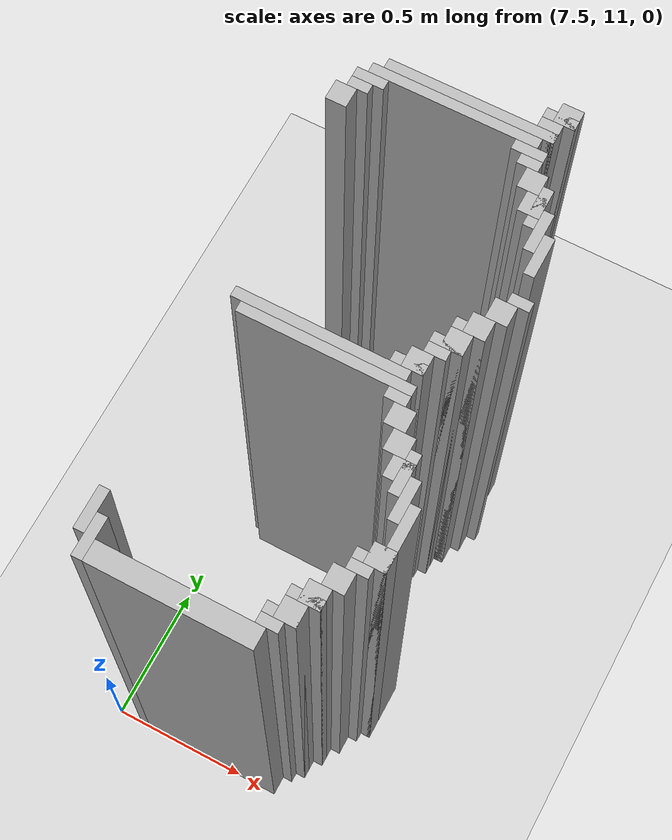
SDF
<sdf version="1.6">
 <world name="slam_world">
  <model name="ground_plane">
   <static>true</static>
   <link name="link">
    <collision name="collision">
     <geometry><plane><normal>0 0 1</normal><size>100 100</size></plane></geometry>
    </collision>
    <visual name="visual">
     <geometry><plane><normal>0 0 1</normal><size>100 100</size></plane></geometry>
     <material>
      <ambient>0.8 0.8 0.8 1</ambient>
      <diffuse>0.8 0.8 0.8 1</diffuse>
      <specular>0.8 0.8 0.8 1</specular>
     </material>
    </visual>
   </link>
  </model>
  <model name="wall_1473">
   <static>true</static>
   <pose>8.178654292343387 12.842227378190255 1.0 0 0 0</pose>
   <link name="link">
    <collision name="collision">
     <geometry><box><size>0.06960556844547564 0.06960556844547564 2.0</size></box></geometry>
    </collision>
    <visual name="visual">
     <geometry><box><size>0.06960556844547564 0.06960556844547564 2.0</size></box></geometry>
     <material><ambient>0.5 0.5 0.5 1</ambient><diffuse>0.7 0.7 0.7 1</diffuse></material>
    </visual>
   </link>
  </model>
  <model name="wall_1488">
   <static>true</static>
   <pose>8.161252900232018 12.824825986078885 1.0 0 0 0</pose>
   <link name="link">
    <collision name="collision">
     <geometry><box><size>0.10440835266821345 0.03480278422273782 2.0</size></box></geometry>
    </collision>
    <visual name="visual">
     <geometry><box><size>0.10440835266821345 0.03480278422273782 2.0</size></box></geometry>
     <material><ambient>0.5 0.5 0.5 1</ambient><diffuse>0.7 0.7 0.7 1</diffuse></material>
    </visual>
   </link>
  </model>
  <model name="wall_1501">
   <static>true</static>
   <pose>8.14385150812065 12.772621809744779 1.0 0 0 0</pose>
   <link name="link">
    <collision name="collision">
     <geometry><box><size>0.06960556844547564 0.06960556844547564 2.0</size></box></geometry>
    </collision>
    <visual name="visual">
     <geometry><box><size>0.06960556844547564 0.06960556844547564 2.0</size></box></geometry>
     <material><ambient>0.5 0.5 0.5 1</ambient><diffuse>0.7 0.7 0.7 1</diffuse></material>
    </visual>
   </link>
  </model>
  <model name="wall_1512">
   <static>true</static>
   <pose>7.900232018561485 12.75522041763341 1.0 0 0 0</pose>
   <link name="link">
    <collision name="collision">
     <geometry><box><size>0.5568445475638051 0.03480278422273782 2.0</size></box></geometry>
    </collision>
    <visual name="visual">
     <geometry><box><size>0.5568445475638051 0.03480278422273782 2.0</size></box></geometry>
     <material><ambient>0.5 0.5 0.5 1</ambient><diffuse>0.7 0.7 0.7 1</diffuse></material>
    </visual>
   </link>
  </model>
  <model name="wall_1525">
   <static>true</static>
   <pose>7.865429234338746 12.720417633410673 1.0 0 0 0</pose>
   <link name="link">
    <collision name="collision">
     <geometry><box><size>0.5568445475638051 0.03480278422273782 2.0</size></box></geometry>
    </collision>
    <visual name="visual">
     <geometry><box><size>0.5568445475638051 0.03480278422273782 2.0</size></box></geometry>
     <material><ambient>0.5 0.5 0.5 1</ambient><diffuse>0.7 0.7 0.7 1</diffuse></material>
    </visual>
   </link>
  </model>
  <model name="wall_1536">
   <static>true</static>
   <pose>7.604408352668213 12.685614849187935 1.0 0 0 0</pose>
   <link name="link">
    <collision name="collision">
     <geometry><box><size>0.10440835266821345 0.03480278422273782 2.0</size></box></geometry>
    </collision>
    <visual name="visual">
     <geometry><box><size>0.10440835266821345 0.03480278422273782 2.0</size></box></geometry>
     <material><ambient>0.5 0.5 0.5 1</ambient><diffuse>0.7 0.7 0.7 1</diffuse></material>
    </visual>
   </link>
  </model>
  <model name="wall_1537">
   <static>true</static>
   <pose>8.12645011600928 12.685614849187935 1.0 0 0 0</pose>
   <link name="link">
    <collision name="collision">
     <geometry><box><size>0.10440835266821345 0.03480278422273782 2.0</size></box></geometry>
    </collision>
    <visual name="visual">
     <geometry><box><size>0.10440835266821345 0.03480278422273782 2.0</size></box></geometry>
     <material><ambient>0.5 0.5 0.5 1</ambient><diffuse>0.7 0.7 0.7 1</diffuse></material>
    </visual>
   </link>
  </model>
  <model name="wall_1549">
   <static>true</static>
   <pose>7.587006960556844 12.650812064965196 1.0 0 0 0</pose>
   <link name="link">
    <collision name="collision">
     <geometry><box><size>0.06960556844547564 0.03480278422273782 2.0</size></box></geometry>
    </collision>
    <visual name="visual">
     <geometry><box><size>0.06960556844547564 0.03480278422273782 2.0</size></box></geometry>
     <material><ambient>0.5 0.5 0.5 1</ambient><diffuse>0.7 0.7 0.7 1</diffuse></material>
    </visual>
   </link>
  </model>
  <model name="wall_1550">
   <static>true</static>
   <pose>8.14385150812065 12.650812064965196 1.0 0 0 0</pose>
   <link name="link">
    <collision name="collision">
     <geometry><box><size>0.06960556844547564 0.03480278422273782 2.0</size></box></geometry>
    </collision>
    <visual name="visual">
     <geometry><box><size>0.06960556844547564 0.03480278422273782 2.0</size></box></geometry>
     <material><ambient>0.5 0.5 0.5 1</ambient><diffuse>0.7 0.7 0.7 1</diffuse></material>
    </visual>
   </link>
  </model>
  <model name="wall_1561">
   <static>true</static>
   <pose>7.552204176334106 12.59860788863109 1.0 0 0 0</pose>
   <link name="link">
    <collision name="collision">
     <geometry><box><size>0.06960556844547564 0.06960556844547564 2.0</size></box></geometry>
    </collision>
    <visual name="visual">
     <geometry><box><size>0.06960556844547564 0.06960556844547564 2.0</size></box></geometry>
     <material><ambient>0.5 0.5 0.5 1</ambient><diffuse>0.7 0.7 0.7 1</diffuse></material>
    </visual>
   </link>
  </model>
  <model name="wall_1562">
   <static>true</static>
   <pose>8.178654292343387 12.59860788863109 1.0 0 0 0</pose>
   <link name="link">
    <collision name="collision">
     <geometry><box><size>0.06960556844547564 0.06960556844547564 2.0</size></box></geometry>
    </collision>
    <visual name="visual">
     <geometry><box><size>0.06960556844547564 0.06960556844547564 2.0</size></box></geometry>
     <material><ambient>0.5 0.5 0.5 1</ambient><diffuse>0.7 0.7 0.7 1</diffuse></material>
    </visual>
   </link>
  </model>
  <model name="wall_1575">
   <static>true</static>
   <pose>8.230858468677495 12.529002320185615 1.0 0 0 0</pose>
   <link name="link">
    <collision name="collision">
     <geometry><box><size>0.03480278422273782 0.13921113689095127 2.0</size></box></geometry>
    </collision>
    <visual name="visual">
     <geometry><box><size>0.03480278422273782 0.13921113689095127 2.0</size></box></geometry>
     <material><ambient>0.5 0.5 0.5 1</ambient><diffuse>0.7 0.7 0.7 1</diffuse></material>
    </visual>
   </link>
  </model>
  <model name="wall_1587">
   <static>true</static>
   <pose>8.213457076566124 12.529002320185615 1.0 0 0 0</pose>
   <link name="link">
    <collision name="collision">
     <geometry><box><size>0.06960556844547564 0.06960556844547564 2.0</size></box></geometry>
    </collision>
    <visual name="visual">
     <geometry><box><size>0.06960556844547564 0.06960556844547564 2.0</size></box></geometry>
     <material><ambient>0.5 0.5 0.5 1</ambient><diffuse>0.7 0.7 0.7 1</diffuse></material>
    </visual>
   </link>
  </model>
  <model name="wall_1599">
   <static>true</static>
   <pose>8.265661252900232 12.459396751740138 1.0 0 0 0</pose>
   <link name="link">
    <collision name="collision">
     <geometry><box><size>0.03480278422273782 0.13921113689095127 2.0</size></box></geometry>
    </collision>
    <visual name="visual">
     <geometry><box><size>0.03480278422273782 0.13921113689095127 2.0</size></box></geometry>
     <material><ambient>0.5 0.5 0.5 1</ambient><diffuse>0.7 0.7 0.7 1</diffuse></material>
    </visual>
   </link>
  </model>
  <model name="wall_1619">
   <static>true</static>
   <pose>8.30046403712297 12.389791183294664 1.0 0 0 0</pose>
   <link name="link">
    <collision name="collision">
     <geometry><box><size>0.03480278422273782 0.13921113689095127 2.0</size></box></geometry>
    </collision>
    <visual name="visual">
     <geometry><box><size>0.03480278422273782 0.13921113689095127 2.0</size></box></geometry>
     <material><ambient>0.5 0.5 0.5 1</ambient><diffuse>0.7 0.7 0.7 1</diffuse></material>
    </visual>
   </link>
  </model>
  <model name="wall_1687">
   <static>true</static>
   <pose>8.317865429234338 12.233178654292344 1.0 0 0 0</pose>
   <link name="link">
    <collision name="collision">
     <geometry><box><size>0.06960556844547564 0.03480278422273782 2.0</size></box></geometry>
    </collision>
    <visual name="visual">
     <geometry><box><size>0.06960556844547564 0.03480278422273782 2.0</size></box></geometry>
     <material><ambient>0.5 0.5 0.5 1</ambient><diffuse>0.7 0.7 0.7 1</diffuse></material>
    </visual>
   </link>
  </model>
  <model name="wall_1701">
   <static>true</static>
   <pose>8.2830626450116 12.180974477958236 1.0 0 0 0</pose>
   <link name="link">
    <collision name="collision">
     <geometry><box><size>0.06960556844547564 0.06960556844547564 2.0</size></box></geometry>
    </collision>
    <visual name="visual">
     <geometry><box><size>0.06960556844547564 0.06960556844547564 2.0</size></box></geometry>
     <material><ambient>0.5 0.5 0.5 1</ambient><diffuse>0.7 0.7 0.7 1</diffuse></material>
    </visual>
   </link>
  </model>
  <model name="wall_1715">
   <static>true</static>
   <pose>8.248259860788863 12.11136890951276 1.0 0 0 0</pose>
   <link name="link">
    <collision name="collision">
     <geometry><box><size>0.06960556844547564 0.06960556844547564 2.0</size></box></geometry>
    </collision>
    <visual name="visual">
     <geometry><box><size>0.06960556844547564 0.06960556844547564 2.0</size></box></geometry>
     <material><ambient>0.5 0.5 0.5 1</ambient><diffuse>0.7 0.7 0.7 1</diffuse></material>
    </visual>
   </link>
  </model>
  <model name="wall_1729">
   <static>true</static>
   <pose>8.230858468677495 12.093967517401392 1.0 0 0 0</pose>
   <link name="link">
    <collision name="collision">
     <geometry><box><size>0.10440835266821345 0.03480278422273782 2.0</size></box></geometry>
    </collision>
    <visual name="visual">
     <geometry><box><size>0.10440835266821345 0.03480278422273782 2.0</size></box></geometry>
     <material><ambient>0.5 0.5 0.5 1</ambient><diffuse>0.7 0.7 0.7 1</diffuse></material>
    </visual>
   </link>
  </model>
  <model name="wall_1742">
   <static>true</static>
   <pose>8.213457076566124 12.041763341067284 1.0 0 0 0</pose>
   <link name="link">
    <collision name="collision">
     <geometry><box><size>0.06960556844547564 0.06960556844547564 2.0</size></box></geometry>
    </collision>
    <visual name="visual">
     <geometry><box><size>0.06960556844547564 0.06960556844547564 2.0</size></box></geometry>
     <material><ambient>0.5 0.5 0.5 1</ambient><diffuse>0.7 0.7 0.7 1</diffuse></material>
    </visual>
   </link>
  </model>
  <model name="wall_1753">
   <static>true</static>
   <pose>8.196055684454755 12.024361948955915 1.0 0 0 0</pose>
   <link name="link">
    <collision name="collision">
     <geometry><box><size>0.10440835266821345 0.03480278422273782 2.0</size></box></geometry>
    </collision>
    <visual name="visual">
     <geometry><box><size>0.10440835266821345 0.03480278422273782 2.0</size></box></geometry>
     <material><ambient>0.5 0.5 0.5 1</ambient><diffuse>0.7 0.7 0.7 1</diffuse></material>
    </visual>
   </link>
  </model>
  <model name="wall_1765">
   <static>true</static>
   <pose>8.178654292343387 11.989559164733178 1.0 0 0 0</pose>
   <link name="link">
    <collision name="collision">
     <geometry><box><size>0.06960556844547564 0.03480278422273782 2.0</size></box></geometry>
    </collision>
    <visual name="visual">
     <geometry><box><size>0.06960556844547564 0.03480278422273782 2.0</size></box></geometry>
     <material><ambient>0.5 0.5 0.5 1</ambient><diffuse>0.7 0.7 0.7 1</diffuse></material>
    </visual>
   </link>
  </model>
  <model name="wall_1775">
   <static>true</static>
   <pose>8.14385150812065 11.937354988399072 1.0 0 0 0</pose>
   <link name="link">
    <collision name="collision">
     <geometry><box><size>0.06960556844547564 0.06960556844547564 2.0</size></box></geometry>
    </collision>
    <visual name="visual">
     <geometry><box><size>0.06960556844547564 0.06960556844547564 2.0</size></box></geometry>
     <material><ambient>0.5 0.5 0.5 1</ambient><diffuse>0.7 0.7 0.7 1</diffuse></material>
    </visual>
   </link>
  </model>
  <model name="wall_1789">
   <static>true</static>
   <pose>8.12645011600928 11.919953596287703 1.0 0 0 0</pose>
   <link name="link">
    <collision name="collision">
     <geometry><box><size>0.10440835266821345 0.03480278422273782 2.0</size></box></geometry>
    </collision>
    <visual name="visual">
     <geometry><box><size>0.10440835266821345 0.03480278422273782 2.0</size></box></geometry>
     <material><ambient>0.5 0.5 0.5 1</ambient><diffuse>0.7 0.7 0.7 1</diffuse></material>
    </visual>
   </link>
  </model>
  <model name="wall_1803">
   <static>true</static>
   <pose>7.865429234338746 11.885150812064964 1.0 0 0 0</pose>
   <link name="link">
    <collision name="collision">
     <geometry><box><size>0.5568445475638051 0.03480278422273782 2.0</size></box></geometry>
    </collision>
    <visual name="visual">
     <geometry><box><size>0.5568445475638051 0.03480278422273782 2.0</size></box></geometry>
     <material><ambient>0.5 0.5 0.5 1</ambient><diffuse>0.7 0.7 0.7 1</diffuse></material>
    </visual>
   </link>
  </model>
  <model name="wall_1815">
   <static>true</static>
   <pose>7.900232018561485 11.850348027842227 1.0 0 0 0</pose>
   <link name="link">
    <collision name="collision">
     <geometry><box><size>0.5568445475638051 0.03480278422273782 2.0</size></box></geometry>
    </collision>
    <visual name="visual">
     <geometry><box><size>0.5568445475638051 0.03480278422273782 2.0</size></box></geometry>
     <material><ambient>0.5 0.5 0.5 1</ambient><diffuse>0.7 0.7 0.7 1</diffuse></material>
    </visual>
   </link>
  </model>
  <model name="wall_1828">
   <static>true</static>
   <pose>8.14385150812065 11.81554524361949 1.0 0 0 0</pose>
   <link name="link">
    <collision name="collision">
     <geometry><box><size>0.06960556844547564 0.03480278422273782 2.0</size></box></geometry>
    </collision>
    <visual name="visual">
     <geometry><box><size>0.06960556844547564 0.03480278422273782 2.0</size></box></geometry>
     <material><ambient>0.5 0.5 0.5 1</ambient><diffuse>0.7 0.7 0.7 1</diffuse></material>
    </visual>
   </link>
  </model>
  <model name="wall_1842">
   <static>true</static>
   <pose>8.178654292343387 11.763341067285383 1.0 0 0 0</pose>
   <link name="link">
    <collision name="collision">
     <geometry><box><size>0.06960556844547564 0.06960556844547564 2.0</size></box></geometry>
    </collision>
    <visual name="visual">
     <geometry><box><size>0.06960556844547564 0.06960556844547564 2.0</size></box></geometry>
     <material><ambient>0.5 0.5 0.5 1</ambient><diffuse>0.7 0.7 0.7 1</diffuse></material>
    </visual>
   </link>
  </model>
  <model name="wall_1856">
   <static>true</static>
   <pose>8.213457076566124 11.693735498839906 1.0 0 0 0</pose>
   <link name="link">
    <collision name="collision">
     <geometry><box><size>0.06960556844547564 0.06960556844547564 2.0</size></box></geometry>
    </collision>
    <visual name="visual">
     <geometry><box><size>0.06960556844547564 0.06960556844547564 2.0</size></box></geometry>
     <material><ambient>0.5 0.5 0.5 1</ambient><diffuse>0.7 0.7 0.7 1</diffuse></material>
    </visual>
   </link>
  </model>
  <model name="wall_1870">
   <static>true</static>
   <pose>8.265661252900232 11.624129930394432 1.0 0 0 0</pose>
   <link name="link">
    <collision name="collision">
     <geometry><box><size>0.03480278422273782 0.13921113689095127 2.0</size></box></geometry>
    </collision>
    <visual name="visual">
     <geometry><box><size>0.03480278422273782 0.13921113689095127 2.0</size></box></geometry>
     <material><ambient>0.5 0.5 0.5 1</ambient><diffuse>0.7 0.7 0.7 1</diffuse></material>
    </visual>
   </link>
  </model>
  <model name="wall_1881">
   <static>true</static>
   <pose>8.248259860788863 11.624129930394432 1.0 0 0 0</pose>
   <link name="link">
    <collision name="collision">
     <geometry><box><size>0.06960556844547564 0.06960556844547564 2.0</size></box></geometry>
    </collision>
    <visual name="visual">
     <geometry><box><size>0.06960556844547564 0.06960556844547564 2.0</size></box></geometry>
     <material><ambient>0.5 0.5 0.5 1</ambient><diffuse>0.7 0.7 0.7 1</diffuse></material>
    </visual>
   </link>
  </model>
  <model name="wall_1893">
   <static>true</static>
   <pose>8.30046403712297 11.554524361948955 1.0 0 0 0</pose>
   <link name="link">
    <collision name="collision">
     <geometry><box><size>0.03480278422273782 0.13921113689095127 2.0</size></box></geometry>
    </collision>
    <visual name="visual">
     <geometry><box><size>0.03480278422273782 0.13921113689095127 2.0</size></box></geometry>
     <material><ambient>0.5 0.5 0.5 1</ambient><diffuse>0.7 0.7 0.7 1</diffuse></material>
    </visual>
   </link>
  </model>
  <model name="wall_1913">
   <static>true</static>
   <pose>8.335266821345707 11.450116009280743 1.0 0 0 0</pose>
   <link name="link">
    <collision name="collision">
     <geometry><box><size>0.03480278422273782 0.2088167053364269 2.0</size></box></geometry>
    </collision>
    <visual name="visual">
     <geometry><box><size>0.03480278422273782 0.2088167053364269 2.0</size></box></geometry>
     <material><ambient>0.5 0.5 0.5 1</ambient><diffuse>0.7 0.7 0.7 1</diffuse></material>
    </visual>
   </link>
  </model>
  <model name="wall_1967">
   <static>true</static>
   <pose>8.317865429234338 11.380510440835266 1.0 0 0 0</pose>
   <link name="link">
    <collision name="collision">
     <geometry><box><size>0.06960556844547564 0.06960556844547564 2.0</size></box></geometry>
    </collision>
    <visual name="visual">
     <geometry><box><size>0.06960556844547564 0.06960556844547564 2.0</size></box></geometry>
     <material><ambient>0.5 0.5 0.5 1</ambient><diffuse>0.7 0.7 0.7 1</diffuse></material>
    </visual>
   </link>
  </model>
  <model name="wall_1984">
   <static>true</static>
   <pose>8.30046403712297 11.363109048723897 1.0 0 0 0</pose>
   <link name="link">
    <collision name="collision">
     <geometry><box><size>0.10440835266821345 0.03480278422273782 2.0</size></box></geometry>
    </collision>
    <visual name="visual">
     <geometry><box><size>0.10440835266821345 0.03480278422273782 2.0</size></box></geometry>
     <material><ambient>0.5 0.5 0.5 1</ambient><diffuse>0.7 0.7 0.7 1</diffuse></material>
    </visual>
   </link>
  </model>
  <model name="wall_1998">
   <static>true</static>
   <pose>8.2830626450116 11.32830626450116 1.0 0 0 0</pose>
   <link name="link">
    <collision name="collision">
     <geometry><box><size>0.06960556844547564 0.03480278422273782 2.0</size></box></geometry>
    </collision>
    <visual name="visual">
     <geometry><box><size>0.06960556844547564 0.03480278422273782 2.0</size></box></geometry>
     <material><ambient>0.5 0.5 0.5 1</ambient><diffuse>0.7 0.7 0.7 1</diffuse></material>
    </visual>
   </link>
  </model>
  <model name="wall_2013">
   <static>true</static>
   <pose>8.248259860788863 11.276102088167052 1.0 0 0 0</pose>
   <link name="link">
    <collision name="collision">
     <geometry><box><size>0.06960556844547564 0.06960556844547564 2.0</size></box></geometry>
    </collision>
    <visual name="visual">
     <geometry><box><size>0.06960556844547564 0.06960556844547564 2.0</size></box></geometry>
     <material><ambient>0.5 0.5 0.5 1</ambient><diffuse>0.7 0.7 0.7 1</diffuse></material>
    </visual>
   </link>
  </model>
  <model name="wall_2030">
   <static>true</static>
   <pose>8.213457076566124 11.206496519721577 1.0 0 0 0</pose>
   <link name="link">
    <collision name="collision">
     <geometry><box><size>0.06960556844547564 0.06960556844547564 2.0</size></box></geometry>
    </collision>
    <visual name="visual">
     <geometry><box><size>0.06960556844547564 0.06960556844547564 2.0</size></box></geometry>
     <material><ambient>0.5 0.5 0.5 1</ambient><diffuse>0.7 0.7 0.7 1</diffuse></material>
    </visual>
   </link>
  </model>
  <model name="wall_2046">
   <static>true</static>
   <pose>7.569605568445476 11.1368909512761 1.0 0 0 0</pose>
   <link name="link">
    <collision name="collision">
     <geometry><box><size>0.03480278422273782 0.13921113689095127 2.0</size></box></geometry>
    </collision>
    <visual name="visual">
     <geometry><box><size>0.03480278422273782 0.13921113689095127 2.0</size></box></geometry>
     <material><ambient>0.5 0.5 0.5 1</ambient><diffuse>0.7 0.7 0.7 1</diffuse></material>
    </visual>
   </link>
  </model>
  <model name="wall_2047">
   <static>true</static>
   <pose>8.196055684454755 11.189095127610209 1.0 0 0 0</pose>
   <link name="link">
    <collision name="collision">
     <geometry><box><size>0.10440835266821345 0.03480278422273782 2.0</size></box></geometry>
    </collision>
    <visual name="visual">
     <geometry><box><size>0.10440835266821345 0.03480278422273782 2.0</size></box></geometry>
     <material><ambient>0.5 0.5 0.5 1</ambient><diffuse>0.7 0.7 0.7 1</diffuse></material>
    </visual>
   </link>
  </model>
  <model name="wall_2059">
   <static>true</static>
   <pose>8.178654292343387 11.1368909512761 1.0 0 0 0</pose>
   <link name="link">
    <collision name="collision">
     <geometry><box><size>0.06960556844547564 0.06960556844547564 2.0</size></box></geometry>
    </collision>
    <visual name="visual">
     <geometry><box><size>0.06960556844547564 0.06960556844547564 2.0</size></box></geometry>
     <material><ambient>0.5 0.5 0.5 1</ambient><diffuse>0.7 0.7 0.7 1</diffuse></material>
    </visual>
   </link>
  </model>
  <model name="wall_2072">
   <static>true</static>
   <pose>7.604408352668213 11.067285382830626 1.0 0 0 0</pose>
   <link name="link">
    <collision name="collision">
     <geometry><box><size>0.03480278422273782 0.13921113689095127 2.0</size></box></geometry>
    </collision>
    <visual name="visual">
     <geometry><box><size>0.03480278422273782 0.13921113689095127 2.0</size></box></geometry>
     <material><ambient>0.5 0.5 0.5 1</ambient><diffuse>0.7 0.7 0.7 1</diffuse></material>
    </visual>
   </link>
  </model>
  <model name="wall_2073">
   <static>true</static>
   <pose>8.161252900232018 11.119489559164732 1.0 0 0 0</pose>
   <link name="link">
    <collision name="collision">
     <geometry><box><size>0.10440835266821345 0.03480278422273782 2.0</size></box></geometry>
    </collision>
    <visual name="visual">
     <geometry><box><size>0.10440835266821345 0.03480278422273782 2.0</size></box></geometry>
     <material><ambient>0.5 0.5 0.5 1</ambient><diffuse>0.7 0.7 0.7 1</diffuse></material>
    </visual>
   </link>
  </model>
  <model name="wall_2085">
   <static>true</static>
   <pose>8.14385150812065 11.084686774941995 1.0 0 0 0</pose>
   <link name="link">
    <collision name="collision">
     <geometry><box><size>0.06960556844547564 0.03480278422273782 2.0</size></box></geometry>
    </collision>
    <visual name="visual">
     <geometry><box><size>0.06960556844547564 0.03480278422273782 2.0</size></box></geometry>
     <material><ambient>0.5 0.5 0.5 1</ambient><diffuse>0.7 0.7 0.7 1</diffuse></material>
    </visual>
   </link>
  </model>
  <model name="wall_2096">
   <static>true</static>
   <pose>7.882830626450116 11.032482598607888 1.0 0 0 0</pose>
   <link name="link">
    <collision name="collision">
     <geometry><box><size>0.5220417633410672 0.06960556844547564 2.0</size></box></geometry>
    </collision>
    <visual name="visual">
     <geometry><box><size>0.5220417633410672 0.06960556844547564 2.0</size></box></geometry>
     <material><ambient>0.5 0.5 0.5 1</ambient><diffuse>0.7 0.7 0.7 1</diffuse></material>
    </visual>
   </link>
  </model>
 </world>
</sdf>
